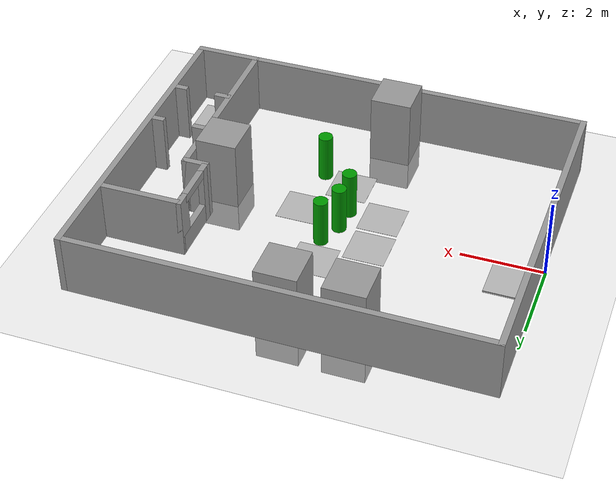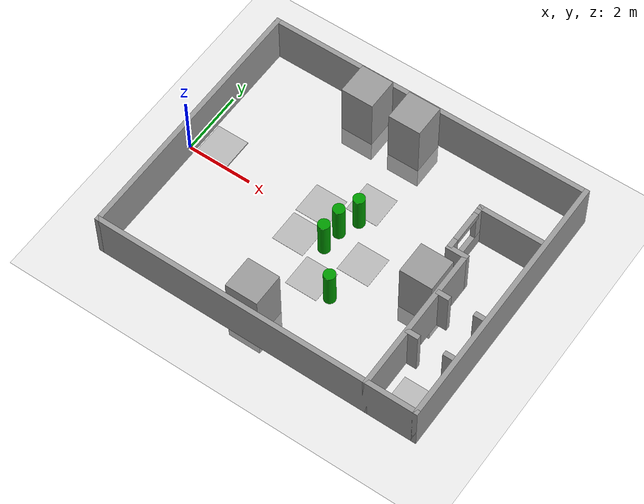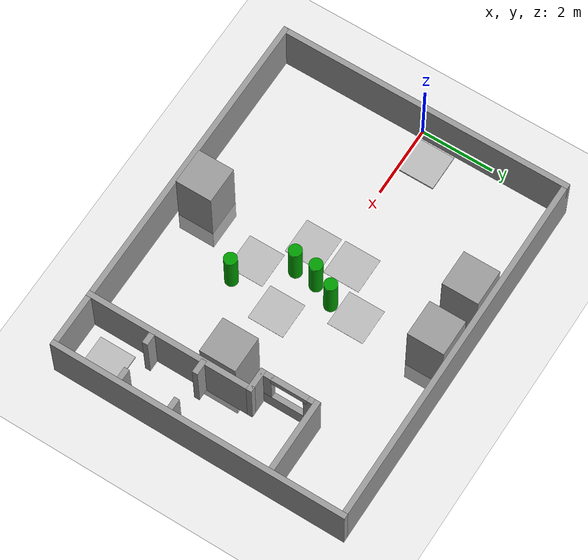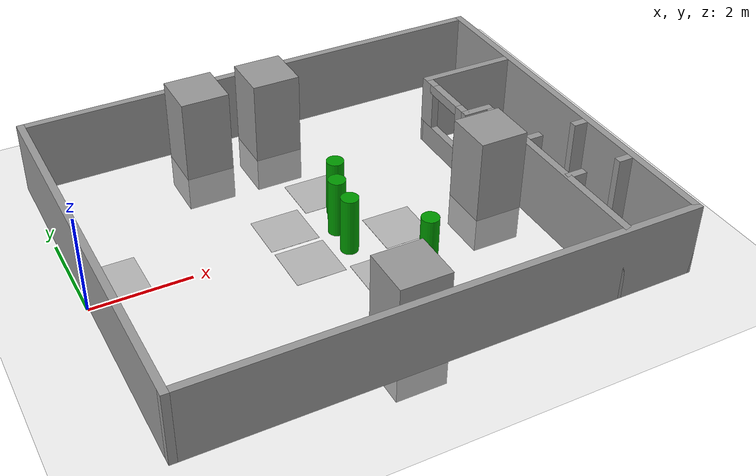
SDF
<sdf version="1.6">
 <world name="default">
  <light name="sun" type="directional">
   <pose>0 0 10 0 -0 0</pose>
   <diffuse>0.8 0.8 0.8 1</diffuse>
   <specular>0.2 0.2 0.2 1</specular>
   <attenuation>
    <range>1000</range>
    <constant>0.9</constant>
    <linear>0.01</linear>
    <quadratic>0.001</quadratic>
   </attenuation>
   <direction>-0.5 0.1 -0.9</direction>
  </light>
  <model name="ground_plane">
   <static>1</static>
   <link name="link">
    <collision name="collision">
     <geometry><plane><normal>0 0 1</normal><size>100 100</size></plane></geometry>
     <surface><friction><ode><mu>100</mu><mu2>50</mu2></ode></friction></surface>
    </collision>
    <visual name="visual">
     <cast_shadows>0</cast_shadows>
     <geometry><plane><normal>0 0 1</normal><size>100 100</size></plane></geometry>
     <material>
      <script><uri>file://media/materials/scripts/gazebo.material</uri><name>Gazebo/Grey</name></script>
     </material>
    </visual>
   </link>
  </model>
  <gravity>0 0 -9.8</gravity>
  <magnetic_field>6e-06 2.3e-05 -4.2e-05</magnetic_field>
  <atmosphere type="adiabatic"/>
  <physics name="default_physics" default="0" type="ode">
   <max_step_size>0.001</max_step_size>
   <real_time_factor>1</real_time_factor>
   <real_time_update_rate>1000</real_time_update_rate>
  </physics>
  <scene><ambient>0.4 0.4 0.4 1</ambient><background>0.7 0.7 0.7 1</background><shadows>1</shadows></scene>
  <spherical_coordinates>
   <surface_model>EARTH_WGS84</surface_model>
   <latitude_deg>0</latitude_deg>
   <longitude_deg>0</longitude_deg>
   <elevation>0</elevation>
   <heading_deg>0</heading_deg>
  </spherical_coordinates>
  <model name="robocup">
   <pose>5.1028 0.03797 0 0 -0 0</pose>
   <link name="Wall_11">
    <collision name="Wall_11_Collision">
     <geometry><box><size>4.65 0.15 1.5</size></box></geometry>
     <pose>0 0 0.75 0 -0 0</pose>
    </collision>
    <visual name="Wall_11_Visual">
     <pose>0 0 0.75 0 -0 0</pose>
     <geometry><box><size>4.65 0.15 1.5</size></box></geometry>
     <material>
      <script><uri>file://media/materials/scripts/gazebo.material</uri><name>Gazebo/Grey</name></script>
      <ambient>1 1 1 1</ambient>
     </material>
     <meta><layer>0</layer></meta>
    </visual>
    <pose>3.5 -1.75 0 0 -0 1.5708</pose>
   </link>
   <link name="Wall_13">
    <collision name="Wall_13_Collision">
     <geometry><box><size>0.65 0.15 1.5</size></box></geometry>
     <pose>0 0 0.75 0 -0 0</pose>
    </collision>
    <visual name="Wall_13_Visual">
     <pose>0 0 0.75 0 -0 0</pose>
     <geometry><box><size>0.65 0.15 1.5</size></box></geometry>
     <material>
      <script><uri>file://media/materials/scripts/gazebo.material</uri><name>Gazebo/Grey</name></script>
      <ambient>1 1 1 1</ambient>
     </material>
     <meta><layer>0</layer></meta>
    </visual>
    <pose>3.25 0.5 0 0 -0 3.14159</pose>
   </link>
   <link name="Wall_15">
    <pose>3 1.25 0 0 -0 1.5708</pose>
    <visual name="Wall_15_Visual_0">
     <pose>-0.600442 0 0.75 0 -0 0</pose>
     <geometry><box><size>0.3 0.15 1.5</size></box></geometry>
     <material>
      <script><uri>file://media/materials/scripts/gazebo.material</uri><name>Gazebo/Grey</name></script>
      <ambient>1 1 1 1</ambient>
     </material>
     <meta><layer>0</layer></meta>
    </visual>
    <collision name="Wall_15_Collision_0">
     <geometry><box><size>0.3 0.15 1.5</size></box></geometry>
     <pose>-0.600442 0 0.75 0 -0 0</pose>
    </collision>
    <visual name="Wall_15_Visual_1">
     <pose>0 0 0.25 0 -0 0</pose>
     <geometry><box><size>1.5 0.15 0.5</size></box></geometry>
     <material>
      <script><uri>file://media/materials/scripts/gazebo.material</uri><name>Gazebo/Grey</name></script>
      <ambient>1 1 1 1</ambient>
     </material>
     <meta><layer>0</layer></meta>
    </visual>
    <collision name="Wall_15_Collision_1">
     <geometry><box><size>1.5 0.15 0.5</size></box></geometry>
     <pose>0 0 0.25 0 -0 0</pose>
    </collision>
    <visual name="Wall_15_Visual_2">
     <pose>0.624558 0 1 0 -0 0</pose>
     <geometry><box><size>0.400884 0.15 1</size></box></geometry>
     <material>
      <script><uri>file://media/materials/scripts/gazebo.material</uri><name>Gazebo/Grey</name></script>
      <ambient>1 1 1 1</ambient>
     </material>
     <meta><layer>0</layer></meta>
    </visual>
    <collision name="Wall_15_Collision_2">
     <geometry><box><size>0.400884 0.15 1</size></box></geometry>
     <pose>0.624558 0 1 0 -0 0</pose>
    </collision>
    <visual name="Wall_15_Visual_3">
     <pose>0.024116 0 1.4 0 -0 0</pose>
     <geometry><box><size>1 0.15 0.2</size></box></geometry>
     <material>
      <script><uri>file://media/materials/scripts/gazebo.material</uri><name>Gazebo/Grey</name></script>
      <ambient>1 1 1 1</ambient>
     </material>
     <meta><layer>0</layer></meta>
    </visual>
    <collision name="Wall_15_Collision_3">
     <geometry><box><size>1 0.15 0.2</size></box></geometry>
     <pose>0.024116 0 1.4 0 -0 0</pose>
    </collision>
   </link>
   <link name="Wall_17">
    <collision name="Wall_17_Collision">
     <geometry><box><size>2 0.15 1.5</size></box></geometry>
     <pose>0 0 0.75 0 -0 0</pose>
    </collision>
    <visual name="Wall_17_Visual">
     <pose>0 0 0.75 0 -0 0</pose>
     <geometry><box><size>2 0.15 1.5</size></box></geometry>
     <material>
      <script><uri>file://media/materials/scripts/gazebo.material</uri><name>Gazebo/Grey</name></script>
      <ambient>1 1 1 1</ambient>
     </material>
     <meta><layer>0</layer></meta>
    </visual>
    <pose>3.925 2 0 0 -0 0</pose>
   </link>
   <link name="Wall_19">
    <collision name="Wall_19_Collision">
     <geometry><box><size>0.4 0.15 1.5</size></box></geometry>
     <pose>0 0 0.75 0 -0 0</pose>
    </collision>
    <visual name="Wall_19_Visual">
     <pose>0 0 0.75 0 -0 0</pose>
     <geometry><box><size>0.4 0.15 1.5</size></box></geometry>
     <material>
      <script><uri>file://media/materials/scripts/gazebo.material</uri><name>Gazebo/Grey</name></script>
      <ambient>1 1 1 1</ambient>
     </material>
     <meta><layer>0</layer></meta>
    </visual>
    <pose>3.675 -0.8 0 0 -0 0</pose>
   </link>
   <link name="Wall_21">
    <collision name="Wall_21_Collision">
     <geometry><box><size>0.3 0.15 1.5</size></box></geometry>
     <pose>0 0 0.75 0 -0 0</pose>
    </collision>
    <visual name="Wall_21_Visual">
     <pose>0 0 0.75 0 -0 0</pose>
     <geometry><box><size>0.3 0.15 1.5</size></box></geometry>
     <material>
      <script><uri>file://media/materials/scripts/gazebo.material</uri><name>Gazebo/Grey</name></script>
      <ambient>1 1 1 1</ambient>
     </material>
     <meta><layer>0</layer></meta>
    </visual>
    <pose>4.775 -0.8 0 0 -0 0</pose>
   </link>
   <link name="Wall_23">
    <collision name="Wall_23_Collision">
     <geometry><box><size>0.4 0.15 1.5</size></box></geometry>
     <pose>0 0 0.75 0 -0 0</pose>
    </collision>
    <visual name="Wall_23_Visual">
     <pose>0 0 0.75 0 -0 0</pose>
     <geometry><box><size>0.4 0.15 1.5</size></box></geometry>
     <material>
      <script><uri>file://media/materials/scripts/gazebo.material</uri><name>Gazebo/Grey</name></script>
      <ambient>1 1 1 1</ambient>
     </material>
     <meta><layer>0</layer></meta>
    </visual>
    <pose>3.675 -2.2 0 0 -0 0</pose>
   </link>
   <link name="Wall_25">
    <collision name="Wall_25_Collision">
     <geometry><box><size>0.3 0.15 1.5</size></box></geometry>
     <pose>0 0 0.75 0 -0 0</pose>
    </collision>
    <visual name="Wall_25_Visual">
     <pose>0 0 0.75 0 -0 0</pose>
     <geometry><box><size>0.3 0.15 1.5</size></box></geometry>
     <material>
      <script><uri>file://media/materials/scripts/gazebo.material</uri><name>Gazebo/Grey</name></script>
      <ambient>1 1 1 1</ambient>
     </material>
     <meta><layer>0</layer></meta>
    </visual>
    <pose>4.775 -2.2 0 0 -0 0</pose>
   </link>
   <link name="Wall_3">
    <collision name="Wall_3_Collision">
     <geometry><box><size>8.15 0.15 1.5</size></box></geometry>
     <pose>0 0 0.75 0 -0 0</pose>
    </collision>
    <visual name="Wall_3_Visual">
     <pose>0 0 0.75 0 -0 0</pose>
     <geometry><box><size>8.15 0.15 1.5</size></box></geometry>
     <material>
      <script><uri>file://media/materials/scripts/gazebo.material</uri><name>Gazebo/Grey</name></script>
      <ambient>1 1 1 1</ambient>
     </material>
     <meta><layer>0</layer></meta>
    </visual>
    <pose>-5 0 0 0 -0 1.5708</pose>
   </link>
   <link name="Wall_5">
    <collision name="Wall_5_Collision">
     <geometry><box><size>10.15 0.15 1.5</size></box></geometry>
     <pose>0 0 0.75 0 -0 0</pose>
    </collision>
    <visual name="Wall_5_Visual">
     <pose>0 0 0.75 0 -0 0</pose>
     <geometry><box><size>10.15 0.15 1.5</size></box></geometry>
     <material>
      <script><uri>file://media/materials/scripts/gazebo.material</uri><name>Gazebo/Grey</name></script>
      <ambient>1 1 1 1</ambient>
     </material>
     <meta><layer>0</layer></meta>
    </visual>
    <pose>-0 -4 0 0 -0 0</pose>
   </link>
   <link name="Wall_7">
    <collision name="Wall_7_Collision">
     <geometry><box><size>8.15 0.15 1.5</size></box></geometry>
     <pose>0 0 0.75 0 -0 0</pose>
    </collision>
    <visual name="Wall_7_Visual">
     <pose>0 0 0.75 0 -0 0</pose>
     <geometry><box><size>8.15 0.15 1.5</size></box></geometry>
     <material>
      <script><uri>file://media/materials/scripts/gazebo.material</uri><name>Gazebo/Grey</name></script>
      <ambient>1 1 1 1</ambient>
     </material>
     <meta><layer>0</layer></meta>
    </visual>
    <pose>5 0 0 0 -0 1.5708</pose>
   </link>
   <link name="Wall_9">
    <collision name="Wall_9_Collision">
     <geometry><box><size>10 0.15 1.5</size></box></geometry>
     <pose>0 0 0.75 0 -0 0</pose>
    </collision>
    <visual name="Wall_9_Visual">
     <pose>0 0 0.75 0 -0 0</pose>
     <geometry><box><size>10 0.15 1.5</size></box></geometry>
     <material>
      <script><uri>file://media/materials/scripts/gazebo.material</uri><name>Gazebo/Grey</name></script>
      <ambient>1 1 1 1</ambient>
     </material>
     <meta><layer>0</layer></meta>
    </visual>
    <pose>-0.075 4 0 0 -0 0</pose>
   </link>
   <static>1</static>
  </model>
  <model name="unit_box">
   <link name="link_1">
    <inertial>
     <mass>1</mass>
     <inertia>
      <ixx>0.166667</ixx>
      <ixy>0</ixy>
      <ixz>0</ixz>
      <iyy>0.166667</iyy>
      <iyz>0</iyz>
      <izz>0.166667</izz>
     </inertia>
    </inertial>
    <pose>0.033703 0.185129 -0 0 -0 0</pose>
    <visual name="visual">
     <geometry><box><size>1 1 2.5</size></box></geometry>
     <material>
      <lighting>1</lighting>
      <script><uri>file://media/materials/scripts/gazebo.material</uri><name>Gazebo/Grey</name></script>
      <shader type="pixel"><normal_map>__default__</normal_map></shader>
      <ambient>0.3 0.3 0.3 1</ambient>
      <diffuse>0.7 0.7 0.7 1</diffuse>
      <specular>0.01 0.01 0.01 1</specular>
      <emissive>0 0 0 1</emissive>
     </material>
    </visual>
    <collision name="collision">
     <geometry><box><size>1 1 1</size></box></geometry>
     <surface>
      <friction>
       <ode><mu>1</mu><mu2>1</mu2><fdir1>0 0 0</fdir1><slip1>0</slip1><slip2>0</slip2></ode>
       <torsional>
        <coefficient>1</coefficient>
        <patch_radius>0</patch_radius>
        <surface_radius>0</surface_radius>
        <use_patch_radius>1</use_patch_radius>
        <ode><slip>0</slip></ode>
       </torsional>
      </friction>
      <bounce><restitution_coefficient>0</restitution_coefficient><threshold>1e+06</threshold></bounce>
      <contact>
       <collide_without_contact>0</collide_without_contact>
       <collide_without_contact_bitmask>1</collide_without_contact_bitmask>
       <collide_bitmask>1</collide_bitmask>
       <ode>
        <soft_cfm>0</soft_cfm>
        <soft_erp>0.2</soft_erp>
        <kp>1e+13</kp>
        <kd>1</kd>
        <max_vel>0.01</max_vel>
        <min_depth>0</min_depth>
       </ode>
       <bullet>
        <split_impulse>1</split_impulse>
        <split_impulse_penetration_threshold>-0.01</split_impulse_penetration_threshold>
        <soft_cfm>0</soft_cfm>
        <soft_erp>0.2</soft_erp>
        <kp>1e+13</kp>
        <kd>1</kd>
       </bullet>
      </contact>
     </surface>
    </collision>
   </link>
   <static>0</static>
   <pose>7.99365 -0.607987 0.5 0 -0 2.2e-05</pose>
  </model>
  <model name="h_1">
   <link name="link">
    <pose>0 0 0.115 0 -0 0</pose>
    <inertial>
     <mass>1000</mass>
     <inertia><ixx>1000</ixx><ixy>0</ixy><ixz>0</ixz><iyy>1000</iyy><iyz>0</iyz><izz>1000</izz></inertia>
    </inertial>
    <collision name="collision">
     <geometry><box><size>0.496 0.496 0.01</size></box></geometry>
     <surface>
      <contact>
       <poissons_ratio>0.347</poissons_ratio>
       <elastic_modulus>8.8e+09</elastic_modulus>
       <ode><kp>100000</kp><kd>100</kd><max_vel>100</max_vel><min_depth>0.001</min_depth></ode>
      </contact>
      <friction>
       <torsional>
        <coefficient>1</coefficient>
        <use_patch_radius>0</use_patch_radius>
        <surface_radius>0.01</surface_radius>
       </torsional>
      </friction>
     </surface>
    </collision>
    <visual name="visual">
     <geometry><box><size>1 1 0.05</size></box></geometry>
     <material>
      <script>
       <uri>model://H/materials/scripts</uri>
       <uri>model://H/materials/textures</uri>
       <name>Mark/Diffuse2</name>
      </script>
     </material>
    </visual>
   </link>
   <pose>0.709548 0.535554 -0.13432 -0 -0 -0</pose>
  </model>
  <model name="h_1_clone">
   <link name="link">
    <pose>0 0 0.115 0 -0 0</pose>
    <inertial>
     <mass>1000</mass>
     <inertia><ixx>1000</ixx><ixy>0</ixy><ixz>0</ixz><iyy>1000</iyy><iyz>0</iyz><izz>1000</izz></inertia>
    </inertial>
    <collision name="collision">
     <geometry><box><size>0.496 0.496 0.01</size></box></geometry>
     <surface>
      <contact>
       <poissons_ratio>0.347</poissons_ratio>
       <elastic_modulus>8.8e+09</elastic_modulus>
       <ode><kp>100000</kp><kd>100</kd><max_vel>100</max_vel><min_depth>0.001</min_depth></ode>
      </contact>
      <friction>
       <torsional>
        <coefficient>1</coefficient>
        <use_patch_radius>0</use_patch_radius>
        <surface_radius>0.01</surface_radius>
       </torsional>
      </friction>
     </surface>
    </collision>
    <visual name="visual">
     <geometry><box><size>1 1 0.05</size></box></geometry>
     <material>
      <script>
       <uri>model://H/materials/scripts</uri>
       <uri>model://H/materials/textures</uri>
       <name>Mark/Diffuse2</name>
      </script>
     </material>
    </visual>
   </link>
   <pose>9.372 -3.08925 -0.13432 0 -0 0</pose>
  </model>
  <model name="zhuangjiache_0">
   <link name="link">
    <pose>0 0 0.115 0 -0 0</pose>
    <inertial>
     <mass>3.39</mass>
     <inertia><ixx>0.58</ixx><ixy>0</ixy><ixz>0</ixz><iyy>0.58</iyy><iyz>0</iyz><izz>0.19</izz></inertia>
    </inertial>
    <collision name="collision"><geometry><box><size>0.496 0.496 0.01</size></box></geometry></collision>
    <visual name="visual">
     <geometry><box><size>1 1 0.005</size></box></geometry>
     <material>
      <script>
       <uri>model://zhuangjiache/materials/scripts</uri>
       <uri>model://zhuangjiache/materials/textures</uri>
       <name>Mark/Diffuse6</name>
      </script>
     </material>
    </visual>
   </link>
   <pose>5.18828 -1.54393 -0.11 0 -0 0.00193</pose>
  </model>
  <model name="zhangpeng_0">
   <link name="link">
    <pose>0 0 0.115 0 -0 0</pose>
    <inertial>
     <mass>3.39</mass>
     <inertia><ixx>0.58</ixx><ixy>0</ixy><ixz>0</ixz><iyy>0.58</iyy><iyz>0</iyz><izz>0.19</izz></inertia>
    </inertial>
    <collision name="collision"><geometry><box><size>0.496 0.496 0.005</size></box></geometry></collision>
    <visual name="visual">
     <geometry><box><size>1 1 0.005</size></box></geometry>
     <material>
      <script>
       <uri>model://zhangpeng/materials/scripts</uri>
       <uri>model://zhangpeng/materials/textures</uri>
       <name>Mark/Diffuse5</name>
      </script>
     </material>
    </visual>
   </link>
   <pose>4.08588 -0.603056 -0.1125 0 -0 0</pose>
  </model>
  <model name="tanke_0">
   <link name="link">
    <pose>0 0 0.115 0 -0 0</pose>
    <inertial>
     <mass>3.39</mass>
     <inertia><ixx>0.58</ixx><ixy>0</ixy><ixz>0</ixz><iyy>0.58</iyy><iyz>0</iyz><izz>0.19</izz></inertia>
    </inertial>
    <collision name="collision"><geometry><box><size>0.496 0.496 0.005</size></box></geometry></collision>
    <visual name="visual">
     <geometry><box><size>1 1 0.005</size></box></geometry>
     <material>
      <script>
       <uri>model://tanke/materials/scripts</uri>
       <uri>model://tanke/materials/textures</uri>
       <name>Mark/Diffuse4</name>
      </script>
     </material>
    </visual>
   </link>
   <pose>4.06758 0.492132 -0.1125 0 -0 0</pose>
  </model>
  <model name="qiaoliang_0">
   <link name="link">
    <pose>0 0 0.115 0 -0 0</pose>
    <inertial>
     <mass>3.39</mass>
     <inertia><ixx>0.58</ixx><ixy>0</ixy><ixz>0</ixz><iyy>0.58</iyy><iyz>0</iyz><izz>0.19</izz></inertia>
    </inertial>
    <collision name="collision"><geometry><box><size>0.496 0.496 0.005</size></box></geometry></collision>
    <visual name="visual">
     <geometry><box><size>1 1 0.005</size></box></geometry>
     <material>
      <script>
       <uri>model://qiaoliang/materials/scripts</uri>
       <uri>model://qiaoliang/materials/textures</uri>
       <name>Mark/Diffuse3</name>
      </script>
     </material>
    </visual>
   </link>
   <pose>6.0531 -0.398863 -0.1125 0 -0 0</pose>
  </model>
  <model name="dibao_0">
   <link name="link">
    <pose>0 0 0.115 0 -0 0</pose>
    <inertial>
     <mass>3.39</mass>
     <inertia><ixx>0.58</ixx><ixy>0</ixy><ixz>0</ixz><iyy>0.58</iyy><iyz>0</iyz><izz>0.19</izz></inertia>
    </inertial>
    <collision name="collision"><geometry><box><size>0.496 0.496 0.005</size></box></geometry></collision>
    <visual name="visual">
     <geometry><box><size>1 1 0.005</size></box></geometry>
     <material>
      <script>
       <uri>model://dibao/materials/scripts</uri>
       <uri>model://dibao/materials/textures</uri>
       <name>Mark/Diffuse1</name>
      </script>
     </material>
    </visual>
   </link>
   <pose>5.16677 1.29934 -0.1125 0 -0 -3.5e-05</pose>
  </model>
  <model name="green_cylinder">
   <link name="link">
    <inertial>
     <mass>1</mass>
     <inertia><ixx>0.145833</ixx><ixy>0</ixy><ixz>0</ixz><iyy>0.145833</iyy><iyz>0</iyz><izz>0.125</izz></inertia>
    </inertial>
    <visual name="visual">
     <geometry><cylinder><radius>0.175344</radius><length>1.20205</length></cylinder></geometry>
     <material>
      <script><name>Gazebo/Grey</name><uri>file://media/materials/scripts/gazebo.material</uri></script>
      <shader type="pixel"><normal_map>__default__</normal_map></shader>
      <ambient>0 0.6 0 0</ambient>
      <diffuse>0.7 0.7 0.7 1</diffuse>
      <specular>0.01 0.01 0.01 1</specular>
      <emissive>0 0 0 1</emissive>
     </material>
    </visual>
    <collision name="collision">
     <geometry><cylinder><radius>0.175344</radius><length>1.20205</length></cylinder></geometry>
     <surface>
      <friction>
       <ode><mu>1</mu><mu2>1</mu2><fdir1>0 0 0</fdir1><slip1>0</slip1><slip2>0</slip2></ode>
       <torsional>
        <coefficient>1</coefficient>
        <patch_radius>0</patch_radius>
        <surface_radius>0</surface_radius>
        <use_patch_radius>1</use_patch_radius>
        <ode><slip>0</slip></ode>
       </torsional>
      </friction>
      <bounce><restitution_coefficient>0</restitution_coefficient><threshold>1e+06</threshold></bounce>
      <contact>
       <collide_without_contact>0</collide_without_contact>
       <collide_without_contact_bitmask>1</collide_without_contact_bitmask>
       <collide_bitmask>1</collide_bitmask>
       <ode>
        <soft_cfm>0</soft_cfm>
        <soft_erp>0.2</soft_erp>
        <kp>1e+13</kp>
        <kd>1</kd>
        <max_vel>0.01</max_vel>
        <min_depth>0</min_depth>
       </ode>
       <bullet>
        <split_impulse>1</split_impulse>
        <split_impulse_penetration_threshold>-0.01</split_impulse_penetration_threshold>
        <soft_cfm>0</soft_cfm>
        <soft_erp>0.2</soft_erp>
        <kp>1e+13</kp>
        <kd>1</kd>
       </bullet>
      </contact>
     </surface>
    </collision>
   </link>
   <static>0</static>
   <pose>5.21933 0.609864 0.601017 0 -0 -1.5e-05</pose>
  </model>
  <model name="green_cylinder_clone">
   <link name="link">
    <inertial>
     <mass>1</mass>
     <inertia><ixx>0.145833</ixx><ixy>0</ixy><ixz>0</ixz><iyy>0.145833</iyy><iyz>0</iyz><izz>0.125</izz></inertia>
    </inertial>
    <visual name="visual">
     <geometry><cylinder><radius>0.175344</radius><length>1.20205</length></cylinder></geometry>
     <material>
      <script><name>Gazebo/Grey</name><uri>file://media/materials/scripts/gazebo.material</uri></script>
      <shader type="pixel"><normal_map>__default__</normal_map></shader>
      <ambient>0 0.6 0 0</ambient>
      <diffuse>0.7 0.7 0.7 1</diffuse>
      <specular>0.01 0.01 0.01 1</specular>
      <emissive>0 0 0 1</emissive>
     </material>
    </visual>
    <collision name="collision">
     <geometry><cylinder><radius>0.175344</radius><length>1.20205</length></cylinder></geometry>
     <surface>
      <friction>
       <ode><mu>1</mu><mu2>1</mu2><fdir1>0 0 0</fdir1><slip1>0</slip1><slip2>0</slip2></ode>
       <torsional>
        <coefficient>1</coefficient>
        <patch_radius>0</patch_radius>
        <surface_radius>0</surface_radius>
        <use_patch_radius>1</use_patch_radius>
        <ode><slip>0</slip></ode>
       </torsional>
      </friction>
      <bounce><restitution_coefficient>0</restitution_coefficient><threshold>1e+06</threshold></bounce>
      <contact>
       <collide_without_contact>0</collide_without_contact>
       <collide_without_contact_bitmask>1</collide_without_contact_bitmask>
       <collide_bitmask>1</collide_bitmask>
       <ode>
        <soft_cfm>0</soft_cfm>
        <soft_erp>0.2</soft_erp>
        <kp>1e+13</kp>
        <kd>1</kd>
        <max_vel>0.01</max_vel>
        <min_depth>0</min_depth>
       </ode>
       <bullet>
        <split_impulse>1</split_impulse>
        <split_impulse_penetration_threshold>-0.01</split_impulse_penetration_threshold>
        <soft_cfm>0</soft_cfm>
        <soft_erp>0.2</soft_erp>
        <kp>1e+13</kp>
        <kd>1</kd>
       </bullet>
      </contact>
     </surface>
    </collision>
   </link>
   <static>0</static>
   <pose>4.96747 0.035051 0.601016 0 -0 -0.131078</pose>
  </model>
  <model name="green_cylinder_clone_0">
   <link name="link">
    <inertial>
     <mass>1</mass>
     <inertia><ixx>0.145833</ixx><ixy>0</ixy><ixz>0</ixz><iyy>0.145833</iyy><iyz>0</iyz><izz>0.125</izz></inertia>
    </inertial>
    <visual name="visual">
     <geometry><cylinder><radius>0.175344</radius><length>1.20205</length></cylinder></geometry>
     <material>
      <script><name>Gazebo/Grey</name><uri>file://media/materials/scripts/gazebo.material</uri></script>
      <shader type="pixel"><normal_map>__default__</normal_map></shader>
      <ambient>0 0.6 0 0</ambient>
      <diffuse>0.7 0.7 0.7 1</diffuse>
      <specular>0.01 0.01 0.01 1</specular>
      <emissive>0 0 0 1</emissive>
     </material>
    </visual>
    <collision name="collision">
     <geometry><cylinder><radius>0.175344</radius><length>1.20205</length></cylinder></geometry>
     <surface>
      <friction>
       <ode><mu>1</mu><mu2>1</mu2><fdir1>0 0 0</fdir1><slip1>0</slip1><slip2>0</slip2></ode>
       <torsional>
        <coefficient>1</coefficient>
        <patch_radius>0</patch_radius>
        <surface_radius>0</surface_radius>
        <use_patch_radius>1</use_patch_radius>
        <ode><slip>0</slip></ode>
       </torsional>
      </friction>
      <bounce><restitution_coefficient>0</restitution_coefficient><threshold>1e+06</threshold></bounce>
      <contact>
       <collide_without_contact>0</collide_without_contact>
       <collide_without_contact_bitmask>1</collide_without_contact_bitmask>
       <collide_bitmask>1</collide_bitmask>
       <ode>
        <soft_cfm>0</soft_cfm>
        <soft_erp>0.2</soft_erp>
        <kp>1e+13</kp>
        <kd>1</kd>
        <max_vel>0.01</max_vel>
        <min_depth>0</min_depth>
       </ode>
       <bullet>
        <split_impulse>1</split_impulse>
        <split_impulse_penetration_threshold>-0.01</split_impulse_penetration_threshold>
        <soft_cfm>0</soft_cfm>
        <soft_erp>0.2</soft_erp>
        <kp>1e+13</kp>
        <kd>1</kd>
       </bullet>
      </contact>
     </surface>
    </collision>
   </link>
   <static>0</static>
   <pose>4.9202 -0.58182 0.601024 0 0 -0.168891</pose>
  </model>
  <model name="green_cylinder_clone_1">
   <link name="link">
    <inertial>
     <mass>1</mass>
     <inertia><ixx>0.145833</ixx><ixy>0</ixy><ixz>0</ixz><iyy>0.145833</iyy><iyz>0</iyz><izz>0.125</izz></inertia>
    </inertial>
    <visual name="visual">
     <geometry><cylinder><radius>0.175344</radius><length>1.20205</length></cylinder></geometry>
     <material>
      <script><name>Gazebo/Grey</name><uri>file://media/materials/scripts/gazebo.material</uri></script>
      <shader type="pixel"><normal_map>__default__</normal_map></shader>
      <ambient>0 0.6 0 0</ambient>
      <diffuse>0.7 0.7 0.7 1</diffuse>
      <specular>0.01 0.01 0.01 1</specular>
      <emissive>0 0 0 1</emissive>
     </material>
    </visual>
    <collision name="collision">
     <geometry><cylinder><radius>0.175344</radius><length>1.20205</length></cylinder></geometry>
     <surface>
      <friction>
       <ode><mu>1</mu><mu2>1</mu2><fdir1>0 0 0</fdir1><slip1>0</slip1><slip2>0</slip2></ode>
       <torsional>
        <coefficient>1</coefficient>
        <patch_radius>0</patch_radius>
        <surface_radius>0</surface_radius>
        <use_patch_radius>1</use_patch_radius>
        <ode><slip>0</slip></ode>
       </torsional>
      </friction>
      <bounce><restitution_coefficient>0</restitution_coefficient><threshold>1e+06</threshold></bounce>
      <contact>
       <collide_without_contact>0</collide_without_contact>
       <collide_without_contact_bitmask>1</collide_without_contact_bitmask>
       <collide_bitmask>1</collide_bitmask>
       <ode>
        <soft_cfm>0</soft_cfm>
        <soft_erp>0.2</soft_erp>
        <kp>1e+13</kp>
        <kd>1</kd>
        <max_vel>0.01</max_vel>
        <min_depth>0</min_depth>
       </ode>
       <bullet>
        <split_impulse>1</split_impulse>
        <split_impulse_penetration_threshold>-0.01</split_impulse_penetration_threshold>
        <soft_cfm>0</soft_cfm>
        <soft_erp>0.2</soft_erp>
        <kp>1e+13</kp>
        <kd>1</kd>
       </bullet>
      </contact>
     </surface>
    </collision>
   </link>
   <static>0</static>
   <pose>5.93364 -1.76636 0.601019 0 -0 -0.012353</pose>
  </model>
  <model name="unit_box_clone">
   <link name="link_1">
    <inertial>
     <mass>1</mass>
     <inertia>
      <ixx>0.166667</ixx>
      <ixy>0</ixy>
      <ixz>0</ixz>
      <iyy>0.166667</iyy>
      <iyz>0</iyz>
      <izz>0.166667</izz>
     </inertia>
    </inertial>
    <pose>0.033703 0.185129 -0 0 -0 0</pose>
    <visual name="visual">
     <geometry><box><size>1 1 2.5</size></box></geometry>
     <material>
      <lighting>1</lighting>
      <script><uri>file://media/materials/scripts/gazebo.material</uri><name>Gazebo/Grey</name></script>
      <shader type="pixel"><normal_map>__default__</normal_map></shader>
      <ambient>0.3 0.3 0.3 1</ambient>
      <diffuse>0.7 0.7 0.7 1</diffuse>
      <specular>0.01 0.01 0.01 1</specular>
      <emissive>0 0 0 1</emissive>
     </material>
    </visual>
    <collision name="collision">
     <geometry><box><size>1 1 1</size></box></geometry>
     <surface>
      <friction>
       <ode><mu>1</mu><mu2>1</mu2><fdir1>0 0 0</fdir1><slip1>0</slip1><slip2>0</slip2></ode>
       <torsional>
        <coefficient>1</coefficient>
        <patch_radius>0</patch_radius>
        <surface_radius>0</surface_radius>
        <use_patch_radius>1</use_patch_radius>
        <ode><slip>0</slip></ode>
       </torsional>
      </friction>
      <bounce><restitution_coefficient>0</restitution_coefficient><threshold>1e+06</threshold></bounce>
      <contact>
       <collide_without_contact>0</collide_without_contact>
       <collide_without_contact_bitmask>1</collide_without_contact_bitmask>
       <collide_bitmask>1</collide_bitmask>
       <ode>
        <soft_cfm>0</soft_cfm>
        <soft_erp>0.2</soft_erp>
        <kp>1e+13</kp>
        <kd>1</kd>
        <max_vel>0.01</max_vel>
        <min_depth>0</min_depth>
       </ode>
       <bullet>
        <split_impulse>1</split_impulse>
        <split_impulse_penetration_threshold>-0.01</split_impulse_penetration_threshold>
        <soft_cfm>0</soft_cfm>
        <soft_erp>0.2</soft_erp>
        <kp>1e+13</kp>
        <kd>1</kd>
       </bullet>
      </contact>
     </surface>
    </collision>
   </link>
   <static>0</static>
   <pose>4.59949 -3.51748 0.5 0 -0 2.2e-05</pose>
  </model>
  <model name="unit_box_clone_0">
   <link name="link_1">
    <inertial>
     <mass>1</mass>
     <inertia>
      <ixx>0.166667</ixx>
      <ixy>0</ixy>
      <ixz>0</ixz>
      <iyy>0.166667</iyy>
      <iyz>0</iyz>
      <izz>0.166667</izz>
     </inertia>
    </inertial>
    <pose>0.033703 0.185129 -0 0 -0 0</pose>
    <visual name="visual">
     <geometry><box><size>1 1 2.5</size></box></geometry>
     <material>
      <lighting>1</lighting>
      <script><uri>file://media/materials/scripts/gazebo.material</uri><name>Gazebo/Grey</name></script>
      <shader type="pixel"><normal_map>__default__</normal_map></shader>
      <ambient>0.3 0.3 0.3 1</ambient>
      <diffuse>0.7 0.7 0.7 1</diffuse>
      <specular>0.01 0.01 0.01 1</specular>
      <emissive>0 0 0 1</emissive>
     </material>
    </visual>
    <collision name="collision">
     <geometry><box><size>1 1 1</size></box></geometry>
     <surface>
      <friction>
       <ode><mu>1</mu><mu2>1</mu2><fdir1>0 0 0</fdir1><slip1>0</slip1><slip2>0</slip2></ode>
       <torsional>
        <coefficient>1</coefficient>
        <patch_radius>0</patch_radius>
        <surface_radius>0</surface_radius>
        <use_patch_radius>1</use_patch_radius>
        <ode><slip>0</slip></ode>
       </torsional>
      </friction>
      <bounce><restitution_coefficient>0</restitution_coefficient><threshold>1e+06</threshold></bounce>
      <contact>
       <collide_without_contact>0</collide_without_contact>
       <collide_without_contact_bitmask>1</collide_without_contact_bitmask>
       <collide_bitmask>1</collide_bitmask>
       <ode>
        <soft_cfm>0</soft_cfm>
        <soft_erp>0.2</soft_erp>
        <kp>1e+13</kp>
        <kd>1</kd>
        <max_vel>0.01</max_vel>
        <min_depth>0</min_depth>
       </ode>
       <bullet>
        <split_impulse>1</split_impulse>
        <split_impulse_penetration_threshold>-0.01</split_impulse_penetration_threshold>
        <soft_cfm>0</soft_cfm>
        <soft_erp>0.2</soft_erp>
        <kp>1e+13</kp>
        <kd>1</kd>
       </bullet>
      </contact>
     </surface>
    </collision>
   </link>
   <static>0</static>
   <pose>3.49369 3.25303 0.5 0 -0 2.2e-05</pose>
  </model>
  <model name="unit_box_clone_1">
   <link name="link_1">
    <inertial>
     <mass>1</mass>
     <inertia>
      <ixx>0.166667</ixx>
      <ixy>0</ixy>
      <ixz>0</ixz>
      <iyy>0.166667</iyy>
      <iyz>0</iyz>
      <izz>0.166667</izz>
     </inertia>
    </inertial>
    <pose>0.033703 0.185129 -0 0 -0 0</pose>
    <visual name="visual">
     <geometry><box><size>1 1 2.5</size></box></geometry>
     <material>
      <lighting>1</lighting>
      <script><uri>file://media/materials/scripts/gazebo.material</uri><name>Gazebo/Grey</name></script>
      <shader type="pixel"><normal_map>__default__</normal_map></shader>
      <ambient>0.3 0.3 0.3 1</ambient>
      <diffuse>0.7 0.7 0.7 1</diffuse>
      <specular>0.01 0.01 0.01 1</specular>
      <emissive>0 0 0 1</emissive>
     </material>
    </visual>
    <collision name="collision">
     <geometry><box><size>1 1 1</size></box></geometry>
     <surface>
      <friction>
       <ode><mu>1</mu><mu2>1</mu2><fdir1>0 0 0</fdir1><slip1>0</slip1><slip2>0</slip2></ode>
       <torsional>
        <coefficient>1</coefficient>
        <patch_radius>0</patch_radius>
        <surface_radius>0</surface_radius>
        <use_patch_radius>1</use_patch_radius>
        <ode><slip>0</slip></ode>
       </torsional>
      </friction>
      <bounce><restitution_coefficient>0</restitution_coefficient><threshold>1e+06</threshold></bounce>
      <contact>
       <collide_without_contact>0</collide_without_contact>
       <collide_without_contact_bitmask>1</collide_without_contact_bitmask>
       <collide_bitmask>1</collide_bitmask>
       <ode>
        <soft_cfm>0</soft_cfm>
        <soft_erp>0.2</soft_erp>
        <kp>1e+13</kp>
        <kd>1</kd>
        <max_vel>0.01</max_vel>
        <min_depth>0</min_depth>
       </ode>
       <bullet>
        <split_impulse>1</split_impulse>
        <split_impulse_penetration_threshold>-0.01</split_impulse_penetration_threshold>
        <soft_cfm>0</soft_cfm>
        <soft_erp>0.2</soft_erp>
        <kp>1e+13</kp>
        <kd>1</kd>
       </bullet>
      </contact>
     </surface>
    </collision>
   </link>
   <static>0</static>
   <pose>5.03119 3.24659 0.5 0 -0 2.2e-05</pose>
  </model>
 </world>
</sdf>
